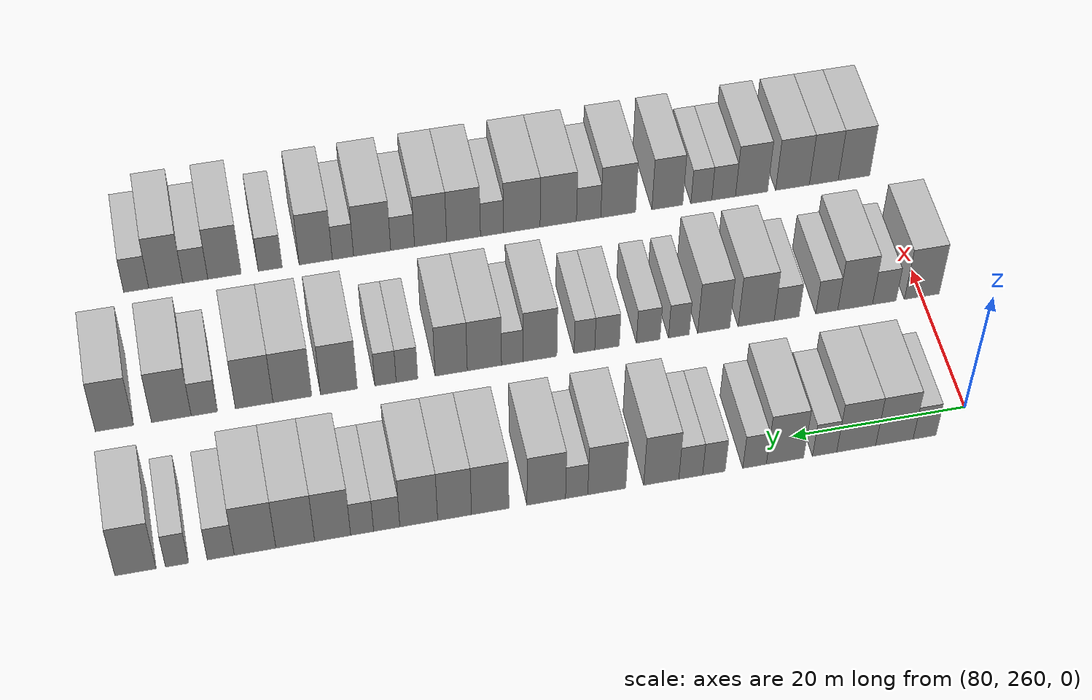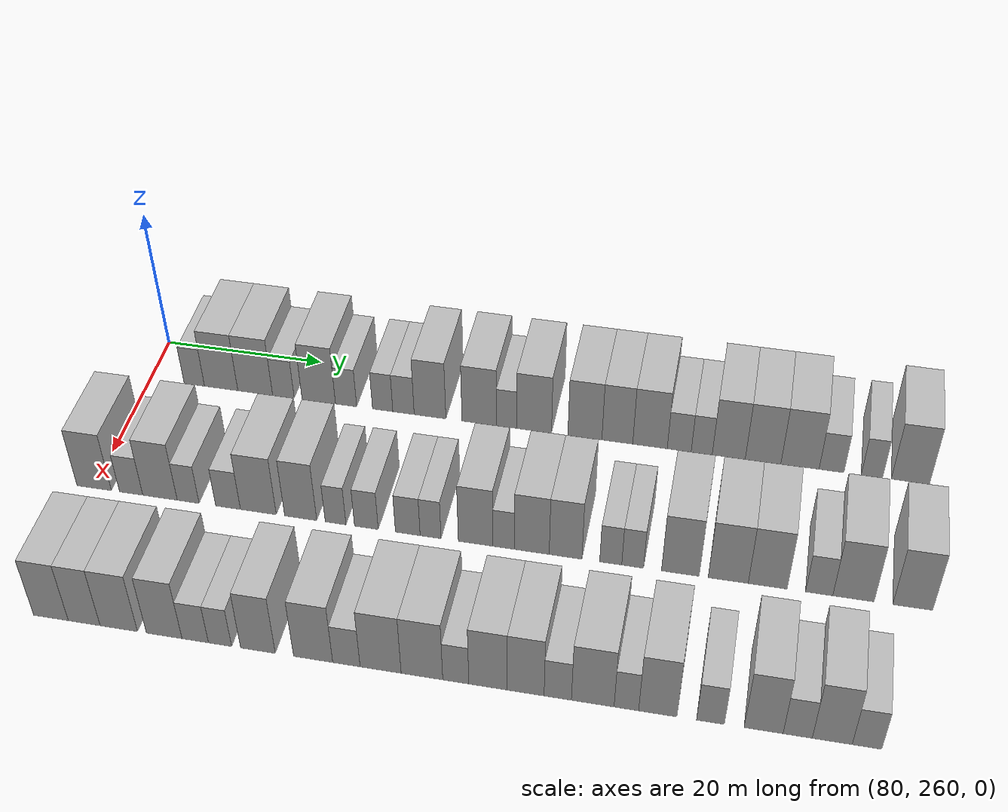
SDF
<sdf version="1.6">
 <world name="default">
  <model name="building_681">
   <static>1</static>
   <pose>82.0000 265.6900 0 0.000000 0.000000 0.000000</pose>
   <link name="link">
    <pose>0 0 3.00 0 0 0</pose>
    <collision name="collision"><geometry><box><size>10.0000 2.6414 6.0000</size></box></geometry></collision>
    <visual name="visual">
     <cast_shadows>0</cast_shadows>
     <geometry><box><size>10.0000 2.6414 6.0000</size></box></geometry>
     <material>
      <script>
       <uri>model://HANNAS_wall/materials/scripts</uri>
       <uri>model://HANNAS_wall/materials/textures</uri>
       <name>vrc/HANNAS_wall</name>
      </script>
     </material>
    </visual>
   </link>
  </model>
  <model name="building_682">
   <static>1</static>
   <pose>82.0000 269.1672 0 0.000000 0.000000 0.000000</pose>
   <link name="link">
    <pose>0 0 4.50 0 0 0</pose>
    <collision name="collision"><geometry><box><size>10.0000 4.3130 9.0000</size></box></geometry></collision>
    <visual name="visual">
     <cast_shadows>0</cast_shadows>
     <geometry><box><size>10.0000 4.3130 9.0000</size></box></geometry>
     <material>
      <script>
       <uri>model://HANNAS_wall/materials/scripts</uri>
       <uri>model://HANNAS_wall/materials/textures</uri>
       <name>vrc/HANNAS_wall</name>
      </script>
     </material>
    </visual>
   </link>
  </model>
  <model name="building_683">
   <static>1</static>
   <pose>82.0000 273.5604 0 0.000000 0.000000 0.000000</pose>
   <link name="link">
    <pose>0 0 4.50 0 0 0</pose>
    <collision name="collision"><geometry><box><size>10.0000 4.4733 9.0000</size></box></geometry></collision>
    <visual name="visual">
     <cast_shadows>0</cast_shadows>
     <geometry><box><size>10.0000 4.4733 9.0000</size></box></geometry>
     <material>
      <script>
       <uri>model://HANNAS_wall/materials/scripts</uri>
       <uri>model://HANNAS_wall/materials/textures</uri>
       <name>vrc/HANNAS_wall</name>
      </script>
     </material>
    </visual>
   </link>
  </model>
  <model name="building_684">
   <static>1</static>
   <pose>82.0000 277.1788 0 0.000000 0.000000 0.000000</pose>
   <link name="link">
    <pose>0 0 3.00 0 0 0</pose>
    <collision name="collision"><geometry><box><size>10.0000 2.7636 6.0000</size></box></geometry></collision>
    <visual name="visual">
     <cast_shadows>0</cast_shadows>
     <geometry><box><size>10.0000 2.7636 6.0000</size></box></geometry>
     <material>
      <script>
       <uri>model://HANNAS_wall/materials/scripts</uri>
       <uri>model://HANNAS_wall/materials/textures</uri>
       <name>vrc/HANNAS_wall</name>
      </script>
     </material>
    </visual>
   </link>
  </model>
  <model name="building_685">
   <static>1</static>
   <pose>82.0000 281.6848 0 0.000000 0.000000 0.000000</pose>
   <link name="link">
    <pose>0 0 4.50 0 0 0</pose>
    <collision name="collision"><geometry><box><size>10.0000 4.2485 9.0000</size></box></geometry></collision>
    <visual name="visual">
     <cast_shadows>0</cast_shadows>
     <geometry><box><size>10.0000 4.2485 9.0000</size></box></geometry>
     <material>
      <script>
       <uri>model://HANNAS_wall/materials/scripts</uri>
       <uri>model://HANNAS_wall/materials/textures</uri>
       <name>vrc/HANNAS_wall</name>
      </script>
     </material>
    </visual>
   </link>
  </model>
  <model name="building_686">
   <static>1</static>
   <pose>82.0000 285.1469 0 0.000000 0.000000 0.000000</pose>
   <link name="link">
    <pose>0 0 3.00 0 0 0</pose>
    <collision name="collision"><geometry><box><size>10.0000 2.6758 6.0000</size></box></geometry></collision>
    <visual name="visual">
     <cast_shadows>0</cast_shadows>
     <geometry><box><size>10.0000 2.6758 6.0000</size></box></geometry>
     <material>
      <script>
       <uri>model://HANNAS_wall/materials/scripts</uri>
       <uri>model://HANNAS_wall/materials/textures</uri>
       <name>vrc/HANNAS_wall</name>
      </script>
     </material>
    </visual>
   </link>
  </model>
  <model name="building_687">
   <static>1</static>
   <pose>82.0000 289.7579 0 0.000000 0.000000 0.000000</pose>
   <link name="link">
    <pose>0 0 3.00 0 0 0</pose>
    <collision name="collision"><geometry><box><size>10.0000 2.5463 6.0000</size></box></geometry></collision>
    <visual name="visual">
     <cast_shadows>0</cast_shadows>
     <geometry><box><size>10.0000 2.5463 6.0000</size></box></geometry>
     <material>
      <script>
       <uri>model://HANNAS_wall/materials/scripts</uri>
       <uri>model://HANNAS_wall/materials/textures</uri>
       <name>vrc/HANNAS_wall</name>
      </script>
     </material>
    </visual>
   </link>
  </model>
  <model name="building_688">
   <static>1</static>
   <pose>82.0000 292.3674 0 0.000000 0.000000 0.000000</pose>
   <link name="link">
    <pose>0 0 3.00 0 0 0</pose>
    <collision name="collision"><geometry><box><size>10.0000 2.6727 6.0000</size></box></geometry></collision>
    <visual name="visual">
     <cast_shadows>0</cast_shadows>
     <geometry><box><size>10.0000 2.6727 6.0000</size></box></geometry>
     <material>
      <script>
       <uri>model://HANNAS_wall/materials/scripts</uri>
       <uri>model://HANNAS_wall/materials/textures</uri>
       <name>vrc/HANNAS_wall</name>
      </script>
     </material>
    </visual>
   </link>
  </model>
  <model name="building_689">
   <static>1</static>
   <pose>82.0000 295.6810 0 0.000000 0.000000 0.000000</pose>
   <link name="link">
    <pose>0 0 4.50 0 0 0</pose>
    <collision name="collision"><geometry><box><size>10.0000 3.9546 9.0000</size></box></geometry></collision>
    <visual name="visual">
     <cast_shadows>0</cast_shadows>
     <geometry><box><size>10.0000 3.9546 9.0000</size></box></geometry>
     <material>
      <script>
       <uri>model://HANNAS_wall/materials/scripts</uri>
       <uri>model://HANNAS_wall/materials/textures</uri>
       <name>vrc/HANNAS_wall</name>
      </script>
     </material>
    </visual>
   </link>
  </model>
  <model name="building_690">
   <static>1</static>
   <pose>82.0000 301.7825 0 0.000000 0.000000 0.000000</pose>
   <link name="link">
    <pose>0 0 4.50 0 0 0</pose>
    <collision name="collision"><geometry><box><size>10.0000 4.2484 9.0000</size></box></geometry></collision>
    <visual name="visual">
     <cast_shadows>0</cast_shadows>
     <geometry><box><size>10.0000 4.2484 9.0000</size></box></geometry>
     <material>
      <script>
       <uri>model://HANNAS_wall/materials/scripts</uri>
       <uri>model://HANNAS_wall/materials/textures</uri>
       <name>vrc/HANNAS_wall</name>
      </script>
     </material>
    </visual>
   </link>
  </model>
  <model name="building_691">
   <static>1</static>
   <pose>82.0000 305.1392 0 0.000000 0.000000 0.000000</pose>
   <link name="link">
    <pose>0 0 3.00 0 0 0</pose>
    <collision name="collision"><geometry><box><size>10.0000 2.4652 6.0000</size></box></geometry></collision>
    <visual name="visual">
     <cast_shadows>0</cast_shadows>
     <geometry><box><size>10.0000 2.4652 6.0000</size></box></geometry>
     <material>
      <script>
       <uri>model://HANNAS_wall/materials/scripts</uri>
       <uri>model://HANNAS_wall/materials/textures</uri>
       <name>vrc/HANNAS_wall</name>
      </script>
     </material>
    </visual>
   </link>
  </model>
  <model name="building_692">
   <static>1</static>
   <pose>82.0000 308.5110 0 0.000000 0.000000 0.000000</pose>
   <link name="link">
    <pose>0 0 4.50 0 0 0</pose>
    <collision name="collision"><geometry><box><size>10.0000 4.2784 9.0000</size></box></geometry></collision>
    <visual name="visual">
     <cast_shadows>0</cast_shadows>
     <geometry><box><size>10.0000 4.2784 9.0000</size></box></geometry>
     <material>
      <script>
       <uri>model://HANNAS_wall/materials/scripts</uri>
       <uri>model://HANNAS_wall/materials/textures</uri>
       <name>vrc/HANNAS_wall</name>
      </script>
     </material>
    </visual>
   </link>
  </model>
  <model name="building_693">
   <static>1</static>
   <pose>82.0000 314.7091 0 0.000000 0.000000 0.000000</pose>
   <link name="link">
    <pose>0 0 4.50 0 0 0</pose>
    <collision name="collision"><geometry><box><size>10.0000 4.1179 9.0000</size></box></geometry></collision>
    <visual name="visual">
     <cast_shadows>0</cast_shadows>
     <geometry><box><size>10.0000 4.1179 9.0000</size></box></geometry>
     <material>
      <script>
       <uri>model://HANNAS_wall/materials/scripts</uri>
       <uri>model://HANNAS_wall/materials/textures</uri>
       <name>vrc/HANNAS_wall</name>
      </script>
     </material>
    </visual>
   </link>
  </model>
  <model name="building_694">
   <static>1</static>
   <pose>82.0000 318.6289 0 0.000000 0.000000 0.000000</pose>
   <link name="link">
    <pose>0 0 4.50 0 0 0</pose>
    <collision name="collision"><geometry><box><size>10.0000 3.7218 9.0000</size></box></geometry></collision>
    <visual name="visual">
     <cast_shadows>0</cast_shadows>
     <geometry><box><size>10.0000 3.7218 9.0000</size></box></geometry>
     <material>
      <script>
       <uri>model://HANNAS_wall/materials/scripts</uri>
       <uri>model://HANNAS_wall/materials/textures</uri>
       <name>vrc/HANNAS_wall</name>
      </script>
     </material>
    </visual>
   </link>
  </model>
  <model name="building_695">
   <static>1</static>
   <pose>82.0000 322.5590 0 0.000000 0.000000 0.000000</pose>
   <link name="link">
    <pose>0 0 4.50 0 0 0</pose>
    <collision name="collision"><geometry><box><size>10.0000 4.1383 9.0000</size></box></geometry></collision>
    <visual name="visual">
     <cast_shadows>0</cast_shadows>
     <geometry><box><size>10.0000 4.1383 9.0000</size></box></geometry>
     <material>
      <script>
       <uri>model://HANNAS_wall/materials/scripts</uri>
       <uri>model://HANNAS_wall/materials/textures</uri>
       <name>vrc/HANNAS_wall</name>
      </script>
     </material>
    </visual>
   </link>
  </model>
  <model name="building_696">
   <static>1</static>
   <pose>82.0000 326.0589 0 0.000000 0.000000 0.000000</pose>
   <link name="link">
    <pose>0 0 3.00 0 0 0</pose>
    <collision name="collision"><geometry><box><size>10.0000 2.8615 6.0000</size></box></geometry></collision>
    <visual name="visual">
     <cast_shadows>0</cast_shadows>
     <geometry><box><size>10.0000 2.8615 6.0000</size></box></geometry>
     <material>
      <script>
       <uri>model://HANNAS_wall/materials/scripts</uri>
       <uri>model://HANNAS_wall/materials/textures</uri>
       <name>vrc/HANNAS_wall</name>
      </script>
     </material>
    </visual>
   </link>
  </model>
  <model name="building_697">
   <static>1</static>
   <pose>82.0000 328.7392 0 0.000000 0.000000 0.000000</pose>
   <link name="link">
    <pose>0 0 3.00 0 0 0</pose>
    <collision name="collision"><geometry><box><size>10.0000 2.4992 6.0000</size></box></geometry></collision>
    <visual name="visual">
     <cast_shadows>0</cast_shadows>
     <geometry><box><size>10.0000 2.4992 6.0000</size></box></geometry>
     <material>
      <script>
       <uri>model://HANNAS_wall/materials/scripts</uri>
       <uri>model://HANNAS_wall/materials/textures</uri>
       <name>vrc/HANNAS_wall</name>
      </script>
     </material>
    </visual>
   </link>
  </model>
  <model name="building_698">
   <static>1</static>
   <pose>82.0000 331.9402 0 0.000000 0.000000 0.000000</pose>
   <link name="link">
    <pose>0 0 4.50 0 0 0</pose>
    <collision name="collision"><geometry><box><size>10.0000 3.9028 9.0000</size></box></geometry></collision>
    <visual name="visual">
     <cast_shadows>0</cast_shadows>
     <geometry><box><size>10.0000 3.9028 9.0000</size></box></geometry>
     <material>
      <script>
       <uri>model://HANNAS_wall/materials/scripts</uri>
       <uri>model://HANNAS_wall/materials/textures</uri>
       <name>vrc/HANNAS_wall</name>
      </script>
     </material>
    </visual>
   </link>
  </model>
  <model name="building_699">
   <static>1</static>
   <pose>82.0000 335.9878 0 0.000000 0.000000 0.000000</pose>
   <link name="link">
    <pose>0 0 4.50 0 0 0</pose>
    <collision name="collision"><geometry><box><size>10.0000 4.1924 9.0000</size></box></geometry></collision>
    <visual name="visual">
     <cast_shadows>0</cast_shadows>
     <geometry><box><size>10.0000 4.1924 9.0000</size></box></geometry>
     <material>
      <script>
       <uri>model://HANNAS_wall/materials/scripts</uri>
       <uri>model://HANNAS_wall/materials/textures</uri>
       <name>vrc/HANNAS_wall</name>
      </script>
     </material>
    </visual>
   </link>
  </model>
  <model name="building_700">
   <static>1</static>
   <pose>82.0000 340.3200 0 0.000000 0.000000 0.000000</pose>
   <link name="link">
    <pose>0 0 4.50 0 0 0</pose>
    <collision name="collision"><geometry><box><size>10.0000 4.4720 9.0000</size></box></geometry></collision>
    <visual name="visual">
     <cast_shadows>0</cast_shadows>
     <geometry><box><size>10.0000 4.4720 9.0000</size></box></geometry>
     <material>
      <script>
       <uri>model://HANNAS_wall/materials/scripts</uri>
       <uri>model://HANNAS_wall/materials/textures</uri>
       <name>vrc/HANNAS_wall</name>
      </script>
     </material>
    </visual>
   </link>
  </model>
  <model name="building_701">
   <static>1</static>
   <pose>82.0000 344.0036 0 0.000000 0.000000 0.000000</pose>
   <link name="link">
    <pose>0 0 3.00 0 0 0</pose>
    <collision name="collision"><geometry><box><size>10.0000 2.8953 6.0000</size></box></geometry></collision>
    <visual name="visual">
     <cast_shadows>0</cast_shadows>
     <geometry><box><size>10.0000 2.8953 6.0000</size></box></geometry>
     <material>
      <script>
       <uri>model://HANNAS_wall/materials/scripts</uri>
       <uri>model://HANNAS_wall/materials/textures</uri>
       <name>vrc/HANNAS_wall</name>
      </script>
     </material>
    </visual>
   </link>
  </model>
  <model name="building_702">
   <static>1</static>
   <pose>82.0000 348.6849 0 0.000000 0.000000 0.000000</pose>
   <link name="link">
    <pose>0 0 3.00 0 0 0</pose>
    <collision name="collision"><geometry><box><size>10.0000 2.4675 6.0000</size></box></geometry></collision>
    <visual name="visual">
     <cast_shadows>0</cast_shadows>
     <geometry><box><size>10.0000 2.4675 6.0000</size></box></geometry>
     <material>
      <script>
       <uri>model://HANNAS_wall/materials/scripts</uri>
       <uri>model://HANNAS_wall/materials/textures</uri>
       <name>vrc/HANNAS_wall</name>
      </script>
     </material>
    </visual>
   </link>
  </model>
  <model name="building_703">
   <static>1</static>
   <pose>82.0000 353.1127 0 0.000000 0.000000 0.000000</pose>
   <link name="link">
    <pose>0 0 4.50 0 0 0</pose>
    <collision name="collision"><geometry><box><size>10.0000 4.3880 9.0000</size></box></geometry></collision>
    <visual name="visual">
     <cast_shadows>0</cast_shadows>
     <geometry><box><size>10.0000 4.3880 9.0000</size></box></geometry>
     <material>
      <script>
       <uri>model://HANNAS_wall/materials/scripts</uri>
       <uri>model://HANNAS_wall/materials/textures</uri>
       <name>vrc/HANNAS_wall</name>
      </script>
     </material>
    </visual>
   </link>
  </model>
  <model name="building_854">
   <static>1</static>
   <pose>101.0000 260.0537 0 0.000000 0.000000 0.000000</pose>
   <link name="link">
    <pose>0 0 4.50 0 0 0</pose>
    <collision name="collision"><geometry><box><size>10.0000 4.2048 9.0000</size></box></geometry></collision>
    <visual name="visual">
     <cast_shadows>0</cast_shadows>
     <geometry><box><size>10.0000 4.2048 9.0000</size></box></geometry>
     <material>
      <script>
       <uri>model://HANNAS_wall/materials/scripts</uri>
       <uri>model://HANNAS_wall/materials/textures</uri>
       <name>vrc/HANNAS_wall</name>
      </script>
     </material>
    </visual>
   </link>
  </model>
  <model name="building_855">
   <static>1</static>
   <pose>101.0000 264.5765 0 0.000000 0.000000 0.000000</pose>
   <link name="link">
    <pose>0 0 3.00 0 0 0</pose>
    <collision name="collision"><geometry><box><size>10.0000 2.8407 6.0000</size></box></geometry></collision>
    <visual name="visual">
     <cast_shadows>0</cast_shadows>
     <geometry><box><size>10.0000 2.8407 6.0000</size></box></geometry>
     <material>
      <script>
       <uri>model://HANNAS_wall/materials/scripts</uri>
       <uri>model://HANNAS_wall/materials/textures</uri>
       <name>vrc/HANNAS_wall</name>
      </script>
     </material>
    </visual>
   </link>
  </model>
  <model name="building_856">
   <static>1</static>
   <pose>101.0000 268.0824 0 0.000000 0.000000 0.000000</pose>
   <link name="link">
    <pose>0 0 4.50 0 0 0</pose>
    <collision name="collision"><geometry><box><size>10.0000 4.1712 9.0000</size></box></geometry></collision>
    <visual name="visual">
     <cast_shadows>0</cast_shadows>
     <geometry><box><size>10.0000 4.1712 9.0000</size></box></geometry>
     <material>
      <script>
       <uri>model://HANNAS_wall/materials/scripts</uri>
       <uri>model://HANNAS_wall/materials/textures</uri>
       <name>vrc/HANNAS_wall</name>
      </script>
     </material>
    </visual>
   </link>
  </model>
  <model name="building_857">
   <static>1</static>
   <pose>101.0000 271.4851 0 0.000000 0.000000 0.000000</pose>
   <link name="link">
    <pose>0 0 3.00 0 0 0</pose>
    <collision name="collision"><geometry><box><size>10.0000 2.6342 6.0000</size></box></geometry></collision>
    <visual name="visual">
     <cast_shadows>0</cast_shadows>
     <geometry><box><size>10.0000 2.6342 6.0000</size></box></geometry>
     <material>
      <script>
       <uri>model://HANNAS_wall/materials/scripts</uri>
       <uri>model://HANNAS_wall/materials/textures</uri>
       <name>vrc/HANNAS_wall</name>
      </script>
     </material>
    </visual>
   </link>
  </model>
  <model name="building_858">
   <static>1</static>
   <pose>101.0000 276.2825 0 0.000000 0.000000 0.000000</pose>
   <link name="link">
    <pose>0 0 3.00 0 0 0</pose>
    <collision name="collision"><geometry><box><size>10.0000 2.9606 6.0000</size></box></geometry></collision>
    <visual name="visual">
     <cast_shadows>0</cast_shadows>
     <geometry><box><size>10.0000 2.9606 6.0000</size></box></geometry>
     <material>
      <script>
       <uri>model://HANNAS_wall/materials/scripts</uri>
       <uri>model://HANNAS_wall/materials/textures</uri>
       <name>vrc/HANNAS_wall</name>
      </script>
     </material>
    </visual>
   </link>
  </model>
  <model name="building_859">
   <static>1</static>
   <pose>101.0000 279.8986 0 0.000000 0.000000 0.000000</pose>
   <link name="link">
    <pose>0 0 4.50 0 0 0</pose>
    <collision name="collision"><geometry><box><size>10.0000 4.2716 9.0000</size></box></geometry></collision>
    <visual name="visual">
     <cast_shadows>0</cast_shadows>
     <geometry><box><size>10.0000 4.2716 9.0000</size></box></geometry>
     <material>
      <script>
       <uri>model://HANNAS_wall/materials/scripts</uri>
       <uri>model://HANNAS_wall/materials/textures</uri>
       <name>vrc/HANNAS_wall</name>
      </script>
     </material>
    </visual>
   </link>
  </model>
  <model name="building_860">
   <static>1</static>
   <pose>101.0000 284.9287 0 0.000000 0.000000 0.000000</pose>
   <link name="link">
    <pose>0 0 4.50 0 0 0</pose>
    <collision name="collision"><geometry><box><size>10.0000 3.7886 9.0000</size></box></geometry></collision>
    <visual name="visual">
     <cast_shadows>0</cast_shadows>
     <geometry><box><size>10.0000 3.7886 9.0000</size></box></geometry>
     <material>
      <script>
       <uri>model://HANNAS_wall/materials/scripts</uri>
       <uri>model://HANNAS_wall/materials/textures</uri>
       <name>vrc/HANNAS_wall</name>
      </script>
     </material>
    </visual>
   </link>
  </model>
  <model name="building_861">
   <static>1</static>
   <pose>101.0000 289.0426 0 0.000000 0.000000 0.000000</pose>
   <link name="link">
    <pose>0 0 3.00 0 0 0</pose>
    <collision name="collision"><geometry><box><size>10.0000 2.4391 6.0000</size></box></geometry></collision>
    <visual name="visual">
     <cast_shadows>0</cast_shadows>
     <geometry><box><size>10.0000 2.4391 6.0000</size></box></geometry>
     <material>
      <script>
       <uri>model://HANNAS_wall/materials/scripts</uri>
       <uri>model://HANNAS_wall/materials/textures</uri>
       <name>vrc/HANNAS_wall</name>
      </script>
     </material>
    </visual>
   </link>
  </model>
  <model name="building_862">
   <static>1</static>
   <pose>101.0000 292.6473 0 0.000000 0.000000 0.000000</pose>
   <link name="link">
    <pose>0 0 3.00 0 0 0</pose>
    <collision name="collision"><geometry><box><size>10.0000 2.7702 6.0000</size></box></geometry></collision>
    <visual name="visual">
     <cast_shadows>0</cast_shadows>
     <geometry><box><size>10.0000 2.7702 6.0000</size></box></geometry>
     <material>
      <script>
       <uri>model://HANNAS_wall/materials/scripts</uri>
       <uri>model://HANNAS_wall/materials/textures</uri>
       <name>vrc/HANNAS_wall</name>
      </script>
     </material>
    </visual>
   </link>
  </model>
  <model name="building_863">
   <static>1</static>
   <pose>101.0000 297.4650 0 0.000000 0.000000 0.000000</pose>
   <link name="link">
    <pose>0 0 3.00 0 0 0</pose>
    <collision name="collision"><geometry><box><size>10.0000 2.8652 6.0000</size></box></geometry></collision>
    <visual name="visual">
     <cast_shadows>0</cast_shadows>
     <geometry><box><size>10.0000 2.8652 6.0000</size></box></geometry>
     <material>
      <script>
       <uri>model://HANNAS_wall/materials/scripts</uri>
       <uri>model://HANNAS_wall/materials/textures</uri>
       <name>vrc/HANNAS_wall</name>
      </script>
     </material>
    </visual>
   </link>
  </model>
  <model name="building_864">
   <static>1</static>
   <pose>101.0000 300.1047 0 0.000000 0.000000 0.000000</pose>
   <link name="link">
    <pose>0 0 3.00 0 0 0</pose>
    <collision name="collision"><geometry><box><size>10.0000 2.4143 6.0000</size></box></geometry></collision>
    <visual name="visual">
     <cast_shadows>0</cast_shadows>
     <geometry><box><size>10.0000 2.4143 6.0000</size></box></geometry>
     <material>
      <script>
       <uri>model://HANNAS_wall/materials/scripts</uri>
       <uri>model://HANNAS_wall/materials/textures</uri>
       <name>vrc/HANNAS_wall</name>
      </script>
     </material>
    </visual>
   </link>
  </model>
  <model name="building_865">
   <static>1</static>
   <pose>101.0000 305.2949 0 0.000000 0.000000 0.000000</pose>
   <link name="link">
    <pose>0 0 4.50 0 0 0</pose>
    <collision name="collision"><geometry><box><size>10.0000 3.9660 9.0000</size></box></geometry></collision>
    <visual name="visual">
     <cast_shadows>0</cast_shadows>
     <geometry><box><size>10.0000 3.9660 9.0000</size></box></geometry>
     <material>
      <script>
       <uri>model://HANNAS_wall/materials/scripts</uri>
       <uri>model://HANNAS_wall/materials/textures</uri>
       <name>vrc/HANNAS_wall</name>
      </script>
     </material>
    </visual>
   </link>
  </model>
  <model name="building_866">
   <static>1</static>
   <pose>101.0000 308.4993 0 0.000000 0.000000 0.000000</pose>
   <link name="link">
    <pose>0 0 3.00 0 0 0</pose>
    <collision name="collision"><geometry><box><size>10.0000 2.4429 6.0000</size></box></geometry></collision>
    <visual name="visual">
     <cast_shadows>0</cast_shadows>
     <geometry><box><size>10.0000 2.4429 6.0000</size></box></geometry>
     <material>
      <script>
       <uri>model://HANNAS_wall/materials/scripts</uri>
       <uri>model://HANNAS_wall/materials/textures</uri>
       <name>vrc/HANNAS_wall</name>
      </script>
     </material>
    </visual>
   </link>
  </model>
  <model name="building_867">
   <static>1</static>
   <pose>101.0000 311.6948 0 0.000000 0.000000 0.000000</pose>
   <link name="link">
    <pose>0 0 4.50 0 0 0</pose>
    <collision name="collision"><geometry><box><size>10.0000 3.9481 9.0000</size></box></geometry></collision>
    <visual name="visual">
     <cast_shadows>0</cast_shadows>
     <geometry><box><size>10.0000 3.9481 9.0000</size></box></geometry>
     <material>
      <script>
       <uri>model://HANNAS_wall/materials/scripts</uri>
       <uri>model://HANNAS_wall/materials/textures</uri>
       <name>vrc/HANNAS_wall</name>
      </script>
     </material>
    </visual>
   </link>
  </model>
  <model name="building_868">
   <static>1</static>
   <pose>101.0000 315.5137 0 0.000000 0.000000 0.000000</pose>
   <link name="link">
    <pose>0 0 4.50 0 0 0</pose>
    <collision name="collision"><geometry><box><size>10.0000 3.6896 9.0000</size></box></geometry></collision>
    <visual name="visual">
     <cast_shadows>0</cast_shadows>
     <geometry><box><size>10.0000 3.6896 9.0000</size></box></geometry>
     <material>
      <script>
       <uri>model://HANNAS_wall/materials/scripts</uri>
       <uri>model://HANNAS_wall/materials/textures</uri>
       <name>vrc/HANNAS_wall</name>
      </script>
     </material>
    </visual>
   </link>
  </model>
  <model name="building_869">
   <static>1</static>
   <pose>101.0000 320.5913 0 0.000000 0.000000 0.000000</pose>
   <link name="link">
    <pose>0 0 3.00 0 0 0</pose>
    <collision name="collision"><geometry><box><size>10.0000 2.4656 6.0000</size></box></geometry></collision>
    <visual name="visual">
     <cast_shadows>0</cast_shadows>
     <geometry><box><size>10.0000 2.4656 6.0000</size></box></geometry>
     <material>
      <script>
       <uri>model://HANNAS_wall/materials/scripts</uri>
       <uri>model://HANNAS_wall/materials/textures</uri>
       <name>vrc/HANNAS_wall</name>
      </script>
     </material>
    </visual>
   </link>
  </model>
  <model name="building_870">
   <static>1</static>
   <pose>101.0000 323.0404 0 0.000000 0.000000 0.000000</pose>
   <link name="link">
    <pose>0 0 3.00 0 0 0</pose>
    <collision name="collision"><geometry><box><size>10.0000 2.4327 6.0000</size></box></geometry></collision>
    <visual name="visual">
     <cast_shadows>0</cast_shadows>
     <geometry><box><size>10.0000 2.4327 6.0000</size></box></geometry>
     <material>
      <script>
       <uri>model://HANNAS_wall/materials/scripts</uri>
       <uri>model://HANNAS_wall/materials/textures</uri>
       <name>vrc/HANNAS_wall</name>
      </script>
     </material>
    </visual>
   </link>
  </model>
  <model name="building_871">
   <static>1</static>
   <pose>101.0000 328.3406 0 0.000000 0.000000 0.000000</pose>
   <link name="link">
    <pose>0 0 4.50 0 0 0</pose>
    <collision name="collision"><geometry><box><size>10.0000 4.1677 9.0000</size></box></geometry></collision>
    <visual name="visual">
     <cast_shadows>0</cast_shadows>
     <geometry><box><size>10.0000 4.1677 9.0000</size></box></geometry>
     <material>
      <script>
       <uri>model://HANNAS_wall/materials/scripts</uri>
       <uri>model://HANNAS_wall/materials/textures</uri>
       <name>vrc/HANNAS_wall</name>
      </script>
     </material>
    </visual>
   </link>
  </model>
  <model name="building_872">
   <static>1</static>
   <pose>101.0000 333.6162 0 0.000000 0.000000 0.000000</pose>
   <link name="link">
    <pose>0 0 4.50 0 0 0</pose>
    <collision name="collision"><geometry><box><size>10.0000 4.3835 9.0000</size></box></geometry></collision>
    <visual name="visual">
     <cast_shadows>0</cast_shadows>
     <geometry><box><size>10.0000 4.3835 9.0000</size></box></geometry>
     <material>
      <script>
       <uri>model://HANNAS_wall/materials/scripts</uri>
       <uri>model://HANNAS_wall/materials/textures</uri>
       <name>vrc/HANNAS_wall</name>
      </script>
     </material>
    </visual>
   </link>
  </model>
  <model name="building_873">
   <static>1</static>
   <pose>101.0000 337.9310 0 0.000000 0.000000 0.000000</pose>
   <link name="link">
    <pose>0 0 4.50 0 0 0</pose>
    <collision name="collision"><geometry><box><size>10.0000 4.2460 9.0000</size></box></geometry></collision>
    <visual name="visual">
     <cast_shadows>0</cast_shadows>
     <geometry><box><size>10.0000 4.2460 9.0000</size></box></geometry>
     <material>
      <script>
       <uri>model://HANNAS_wall/materials/scripts</uri>
       <uri>model://HANNAS_wall/materials/textures</uri>
       <name>vrc/HANNAS_wall</name>
      </script>
     </material>
    </visual>
   </link>
  </model>
  <model name="building_874">
   <static>1</static>
   <pose>101.0000 343.5256 0 0.000000 0.000000 0.000000</pose>
   <link name="link">
    <pose>0 0 3.00 0 0 0</pose>
    <collision name="collision"><geometry><box><size>10.0000 2.9433 6.0000</size></box></geometry></collision>
    <visual name="visual">
     <cast_shadows>0</cast_shadows>
     <geometry><box><size>10.0000 2.9433 6.0000</size></box></geometry>
     <material>
      <script>
       <uri>model://HANNAS_wall/materials/scripts</uri>
       <uri>model://HANNAS_wall/materials/textures</uri>
       <name>vrc/HANNAS_wall</name>
      </script>
     </material>
    </visual>
   </link>
  </model>
  <model name="building_875">
   <static>1</static>
   <pose>101.0000 347.2171 0 0.000000 0.000000 0.000000</pose>
   <link name="link">
    <pose>0 0 4.50 0 0 0</pose>
    <collision name="collision"><geometry><box><size>10.0000 4.4397 9.0000</size></box></geometry></collision>
    <visual name="visual">
     <cast_shadows>0</cast_shadows>
     <geometry><box><size>10.0000 4.4397 9.0000</size></box></geometry>
     <material>
      <script>
       <uri>model://HANNAS_wall/materials/scripts</uri>
       <uri>model://HANNAS_wall/materials/textures</uri>
       <name>vrc/HANNAS_wall</name>
      </script>
     </material>
    </visual>
   </link>
  </model>
  <model name="building_876">
   <static>1</static>
   <pose>101.0000 353.5612 0 0.000000 0.000000 0.000000</pose>
   <link name="link">
    <pose>0 0 4.50 0 0 0</pose>
    <collision name="collision"><geometry><box><size>10.0000 4.2484 9.0000</size></box></geometry></collision>
    <visual name="visual">
     <cast_shadows>0</cast_shadows>
     <geometry><box><size>10.0000 4.2484 9.0000</size></box></geometry>
     <material>
      <script>
       <uri>model://HANNAS_wall/materials/scripts</uri>
       <uri>model://HANNAS_wall/materials/textures</uri>
       <name>vrc/HANNAS_wall</name>
      </script>
     </material>
    </visual>
   </link>
  </model>
  <model name="building_1026">
   <static>1</static>
   <pose>120.0000 262.6361 0 0.000000 0.000000 0.000000</pose>
   <link name="link">
    <pose>0 0 4.50 0 0 0</pose>
    <collision name="collision"><geometry><box><size>10.0000 3.9421 9.0000</size></box></geometry></collision>
    <visual name="visual">
     <cast_shadows>0</cast_shadows>
     <geometry><box><size>10.0000 3.9421 9.0000</size></box></geometry>
     <material>
      <script>
       <uri>model://HANNAS_wall/materials/scripts</uri>
       <uri>model://HANNAS_wall/materials/textures</uri>
       <name>vrc/HANNAS_wall</name>
      </script>
     </material>
    </visual>
   </link>
  </model>
  <model name="building_1027">
   <static>1</static>
   <pose>120.0000 266.4094 0 0.000000 0.000000 0.000000</pose>
   <link name="link">
    <pose>0 0 4.50 0 0 0</pose>
    <collision name="collision"><geometry><box><size>10.0000 3.6045 9.0000</size></box></geometry></collision>
    <visual name="visual">
     <cast_shadows>0</cast_shadows>
     <geometry><box><size>10.0000 3.6045 9.0000</size></box></geometry>
     <material>
      <script>
       <uri>model://HANNAS_wall/materials/scripts</uri>
       <uri>model://HANNAS_wall/materials/textures</uri>
       <name>vrc/HANNAS_wall</name>
      </script>
     </material>
    </visual>
   </link>
  </model>
  <model name="building_1028">
   <static>1</static>
   <pose>120.0000 270.3145 0 0.000000 0.000000 0.000000</pose>
   <link name="link">
    <pose>0 0 4.50 0 0 0</pose>
    <collision name="collision"><geometry><box><size>10.0000 4.2057 9.0000</size></box></geometry></collision>
    <visual name="visual">
     <cast_shadows>0</cast_shadows>
     <geometry><box><size>10.0000 4.2057 9.0000</size></box></geometry>
     <material>
      <script>
       <uri>model://HANNAS_wall/materials/scripts</uri>
       <uri>model://HANNAS_wall/materials/textures</uri>
       <name>vrc/HANNAS_wall</name>
      </script>
     </material>
    </visual>
   </link>
  </model>
  <model name="building_1029">
   <static>1</static>
   <pose>120.0000 275.4046 0 0.000000 0.000000 0.000000</pose>
   <link name="link">
    <pose>0 0 4.50 0 0 0</pose>
    <collision name="collision"><geometry><box><size>10.0000 3.9747 9.0000</size></box></geometry></collision>
    <visual name="visual">
     <cast_shadows>0</cast_shadows>
     <geometry><box><size>10.0000 3.9747 9.0000</size></box></geometry>
     <material>
      <script>
       <uri>model://HANNAS_wall/materials/scripts</uri>
       <uri>model://HANNAS_wall/materials/textures</uri>
       <name>vrc/HANNAS_wall</name>
      </script>
     </material>
    </visual>
   </link>
  </model>
  <model name="building_1030">
   <static>1</static>
   <pose>120.0000 278.8591 0 0.000000 0.000000 0.000000</pose>
   <link name="link">
    <pose>0 0 3.00 0 0 0</pose>
    <collision name="collision"><geometry><box><size>10.0000 2.9344 6.0000</size></box></geometry></collision>
    <visual name="visual">
     <cast_shadows>0</cast_shadows>
     <geometry><box><size>10.0000 2.9344 6.0000</size></box></geometry>
     <material>
      <script>
       <uri>model://HANNAS_wall/materials/scripts</uri>
       <uri>model://HANNAS_wall/materials/textures</uri>
       <name>vrc/HANNAS_wall</name>
      </script>
     </material>
    </visual>
   </link>
  </model>
  <model name="building_1031">
   <static>1</static>
   <pose>120.0000 281.6100 0 0.000000 0.000000 0.000000</pose>
   <link name="link">
    <pose>0 0 3.00 0 0 0</pose>
    <collision name="collision"><geometry><box><size>10.0000 2.5673 6.0000</size></box></geometry></collision>
    <visual name="visual">
     <cast_shadows>0</cast_shadows>
     <geometry><box><size>10.0000 2.5673 6.0000</size></box></geometry>
     <material>
      <script>
       <uri>model://HANNAS_wall/materials/scripts</uri>
       <uri>model://HANNAS_wall/materials/textures</uri>
       <name>vrc/HANNAS_wall</name>
      </script>
     </material>
    </visual>
   </link>
  </model>
  <model name="building_1032">
   <static>1</static>
   <pose>120.0000 285.7936 0 0.000000 0.000000 0.000000</pose>
   <link name="link">
    <pose>0 0 4.50 0 0 0</pose>
    <collision name="collision"><geometry><box><size>10.0000 3.7999 9.0000</size></box></geometry></collision>
    <visual name="visual">
     <cast_shadows>0</cast_shadows>
     <geometry><box><size>10.0000 3.7999 9.0000</size></box></geometry>
     <material>
      <script>
       <uri>model://HANNAS_wall/materials/scripts</uri>
       <uri>model://HANNAS_wall/materials/textures</uri>
       <name>vrc/HANNAS_wall</name>
      </script>
     </material>
    </visual>
   </link>
  </model>
  <model name="building_1033">
   <static>1</static>
   <pose>120.0000 291.8208 0 0.000000 0.000000 0.000000</pose>
   <link name="link">
    <pose>0 0 4.50 0 0 0</pose>
    <collision name="collision"><geometry><box><size>10.0000 4.2545 9.0000</size></box></geometry></collision>
    <visual name="visual">
     <cast_shadows>0</cast_shadows>
     <geometry><box><size>10.0000 4.2545 9.0000</size></box></geometry>
     <material>
      <script>
       <uri>model://HANNAS_wall/materials/scripts</uri>
       <uri>model://HANNAS_wall/materials/textures</uri>
       <name>vrc/HANNAS_wall</name>
      </script>
     </material>
    </visual>
   </link>
  </model>
  <model name="building_1034">
   <static>1</static>
   <pose>120.0000 295.4269 0 0.000000 0.000000 0.000000</pose>
   <link name="link">
    <pose>0 0 3.00 0 0 0</pose>
    <collision name="collision"><geometry><box><size>10.0000 2.9579 6.0000</size></box></geometry></collision>
    <visual name="visual">
     <cast_shadows>0</cast_shadows>
     <geometry><box><size>10.0000 2.9579 6.0000</size></box></geometry>
     <material>
      <script>
       <uri>model://HANNAS_wall/materials/scripts</uri>
       <uri>model://HANNAS_wall/materials/textures</uri>
       <name>vrc/HANNAS_wall</name>
      </script>
     </material>
    </visual>
   </link>
  </model>
  <model name="building_1035">
   <static>1</static>
   <pose>120.0000 299.1125 0 0.000000 0.000000 0.000000</pose>
   <link name="link">
    <pose>0 0 4.50 0 0 0</pose>
    <collision name="collision"><geometry><box><size>10.0000 4.4134 9.0000</size></box></geometry></collision>
    <visual name="visual">
     <cast_shadows>0</cast_shadows>
     <geometry><box><size>10.0000 4.4134 9.0000</size></box></geometry>
     <material>
      <script>
       <uri>model://HANNAS_wall/materials/scripts</uri>
       <uri>model://HANNAS_wall/materials/textures</uri>
       <name>vrc/HANNAS_wall</name>
      </script>
     </material>
    </visual>
   </link>
  </model>
  <model name="building_1036">
   <static>1</static>
   <pose>120.0000 303.5367 0 0.000000 0.000000 0.000000</pose>
   <link name="link">
    <pose>0 0 4.50 0 0 0</pose>
    <collision name="collision"><geometry><box><size>10.0000 4.4349 9.0000</size></box></geometry></collision>
    <visual name="visual">
     <cast_shadows>0</cast_shadows>
     <geometry><box><size>10.0000 4.4349 9.0000</size></box></geometry>
     <material>
      <script>
       <uri>model://HANNAS_wall/materials/scripts</uri>
       <uri>model://HANNAS_wall/materials/textures</uri>
       <name>vrc/HANNAS_wall</name>
      </script>
     </material>
    </visual>
   </link>
  </model>
  <model name="building_1037">
   <static>1</static>
   <pose>120.0000 307.1360 0 0.000000 0.000000 0.000000</pose>
   <link name="link">
    <pose>0 0 3.00 0 0 0</pose>
    <collision name="collision"><geometry><box><size>10.0000 2.7639 6.0000</size></box></geometry></collision>
    <visual name="visual">
     <cast_shadows>0</cast_shadows>
     <geometry><box><size>10.0000 2.7639 6.0000</size></box></geometry>
     <material>
      <script>
       <uri>model://HANNAS_wall/materials/scripts</uri>
       <uri>model://HANNAS_wall/materials/textures</uri>
       <name>vrc/HANNAS_wall</name>
      </script>
     </material>
    </visual>
   </link>
  </model>
  <model name="building_1038">
   <static>1</static>
   <pose>120.0000 310.5487 0 0.000000 0.000000 0.000000</pose>
   <link name="link">
    <pose>0 0 4.50 0 0 0</pose>
    <collision name="collision"><geometry><box><size>10.0000 4.0615 9.0000</size></box></geometry></collision>
    <visual name="visual">
     <cast_shadows>0</cast_shadows>
     <geometry><box><size>10.0000 4.0615 9.0000</size></box></geometry>
     <material>
      <script>
       <uri>model://HANNAS_wall/materials/scripts</uri>
       <uri>model://HANNAS_wall/materials/textures</uri>
       <name>vrc/HANNAS_wall</name>
      </script>
     </material>
    </visual>
   </link>
  </model>
  <model name="building_1039">
   <static>1</static>
   <pose>120.0000 314.5030 0 0.000000 0.000000 0.000000</pose>
   <link name="link">
    <pose>0 0 4.50 0 0 0</pose>
    <collision name="collision"><geometry><box><size>10.0000 3.8472 9.0000</size></box></geometry></collision>
    <visual name="visual">
     <cast_shadows>0</cast_shadows>
     <geometry><box><size>10.0000 3.8472 9.0000</size></box></geometry>
     <material>
      <script>
       <uri>model://HANNAS_wall/materials/scripts</uri>
       <uri>model://HANNAS_wall/materials/textures</uri>
       <name>vrc/HANNAS_wall</name>
      </script>
     </material>
    </visual>
   </link>
  </model>
  <model name="building_1040">
   <static>1</static>
   <pose>120.0000 317.8497 0 0.000000 0.000000 0.000000</pose>
   <link name="link">
    <pose>0 0 3.00 0 0 0</pose>
    <collision name="collision"><geometry><box><size>10.0000 2.8461 6.0000</size></box></geometry></collision>
    <visual name="visual">
     <cast_shadows>0</cast_shadows>
     <geometry><box><size>10.0000 2.8461 6.0000</size></box></geometry>
     <material>
      <script>
       <uri>model://HANNAS_wall/materials/scripts</uri>
       <uri>model://HANNAS_wall/materials/textures</uri>
       <name>vrc/HANNAS_wall</name>
      </script>
     </material>
    </visual>
   </link>
  </model>
  <model name="building_1041">
   <static>1</static>
   <pose>120.0000 321.4813 0 0.000000 0.000000 0.000000</pose>
   <link name="link">
    <pose>0 0 4.50 0 0 0</pose>
    <collision name="collision"><geometry><box><size>10.0000 4.4171 9.0000</size></box></geometry></collision>
    <visual name="visual">
     <cast_shadows>0</cast_shadows>
     <geometry><box><size>10.0000 4.4171 9.0000</size></box></geometry>
     <material>
      <script>
       <uri>model://HANNAS_wall/materials/scripts</uri>
       <uri>model://HANNAS_wall/materials/textures</uri>
       <name>vrc/HANNAS_wall</name>
      </script>
     </material>
    </visual>
   </link>
  </model>
  <model name="building_1042">
   <static>1</static>
   <pose>120.0000 324.9537 0 0.000000 0.000000 0.000000</pose>
   <link name="link">
    <pose>0 0 3.00 0 0 0</pose>
    <collision name="collision"><geometry><box><size>10.0000 2.5278 6.0000</size></box></geometry></collision>
    <visual name="visual">
     <cast_shadows>0</cast_shadows>
     <geometry><box><size>10.0000 2.5278 6.0000</size></box></geometry>
     <material>
      <script>
       <uri>model://HANNAS_wall/materials/scripts</uri>
       <uri>model://HANNAS_wall/materials/textures</uri>
       <name>vrc/HANNAS_wall</name>
      </script>
     </material>
    </visual>
   </link>
  </model>
  <model name="building_1043">
   <static>1</static>
   <pose>120.0000 328.1801 0 0.000000 0.000000 0.000000</pose>
   <link name="link">
    <pose>0 0 4.50 0 0 0</pose>
    <collision name="collision"><geometry><box><size>10.0000 3.9250 9.0000</size></box></geometry></collision>
    <visual name="visual">
     <cast_shadows>0</cast_shadows>
     <geometry><box><size>10.0000 3.9250 9.0000</size></box></geometry>
     <material>
      <script>
       <uri>model://HANNAS_wall/materials/scripts</uri>
       <uri>model://HANNAS_wall/materials/textures</uri>
       <name>vrc/HANNAS_wall</name>
      </script>
     </material>
    </visual>
   </link>
  </model>
  <model name="building_1044">
   <static>1</static>
   <pose>120.0000 333.5544 0 0.000000 0.000000 0.000000</pose>
   <link name="link">
    <pose>0 0 3.00 0 0 0</pose>
    <collision name="collision"><geometry><box><size>10.0000 2.8235 6.0000</size></box></geometry></collision>
    <visual name="visual">
     <cast_shadows>0</cast_shadows>
     <geometry><box><size>10.0000 2.8235 6.0000</size></box></geometry>
     <material>
      <script>
       <uri>model://HANNAS_wall/materials/scripts</uri>
       <uri>model://HANNAS_wall/materials/textures</uri>
       <name>vrc/HANNAS_wall</name>
      </script>
     </material>
    </visual>
   </link>
  </model>
  <model name="building_1045">
   <static>1</static>
   <pose>120.0000 338.9243 0 0.000000 0.000000 0.000000</pose>
   <link name="link">
    <pose>0 0 4.50 0 0 0</pose>
    <collision name="collision"><geometry><box><size>10.0000 3.9164 9.0000</size></box></geometry></collision>
    <visual name="visual">
     <cast_shadows>0</cast_shadows>
     <geometry><box><size>10.0000 3.9164 9.0000</size></box></geometry>
     <material>
      <script>
       <uri>model://HANNAS_wall/materials/scripts</uri>
       <uri>model://HANNAS_wall/materials/textures</uri>
       <name>vrc/HANNAS_wall</name>
      </script>
     </material>
    </visual>
   </link>
  </model>
  <model name="building_1046">
   <static>1</static>
   <pose>120.0000 342.3403 0 0.000000 0.000000 0.000000</pose>
   <link name="link">
    <pose>0 0 3.00 0 0 0</pose>
    <collision name="collision"><geometry><box><size>10.0000 2.9157 6.0000</size></box></geometry></collision>
    <visual name="visual">
     <cast_shadows>0</cast_shadows>
     <geometry><box><size>10.0000 2.9157 6.0000</size></box></geometry>
     <material>
      <script>
       <uri>model://HANNAS_wall/materials/scripts</uri>
       <uri>model://HANNAS_wall/materials/textures</uri>
       <name>vrc/HANNAS_wall</name>
      </script>
     </material>
    </visual>
   </link>
  </model>
  <model name="building_1047">
   <static>1</static>
   <pose>120.0000 345.7852 0 0.000000 0.000000 0.000000</pose>
   <link name="link">
    <pose>0 0 4.50 0 0 0</pose>
    <collision name="collision"><geometry><box><size>10.0000 3.9742 9.0000</size></box></geometry></collision>
    <visual name="visual">
     <cast_shadows>0</cast_shadows>
     <geometry><box><size>10.0000 3.9742 9.0000</size></box></geometry>
     <material>
      <script>
       <uri>model://HANNAS_wall/materials/scripts</uri>
       <uri>model://HANNAS_wall/materials/textures</uri>
       <name>vrc/HANNAS_wall</name>
      </script>
     </material>
    </visual>
   </link>
  </model>
  <model name="building_1048">
   <static>1</static>
   <pose>120.0000 349.2340 0 0.000000 0.000000 0.000000</pose>
   <link name="link">
    <pose>0 0 3.00 0 0 0</pose>
    <collision name="collision"><geometry><box><size>10.0000 2.9234 6.0000</size></box></geometry></collision>
    <visual name="visual">
     <cast_shadows>0</cast_shadows>
     <geometry><box><size>10.0000 2.9234 6.0000</size></box></geometry>
     <material>
      <script>
       <uri>model://HANNAS_wall/materials/scripts</uri>
       <uri>model://HANNAS_wall/materials/textures</uri>
       <name>vrc/HANNAS_wall</name>
      </script>
     </material>
    </visual>
   </link>
  </model>
 </world>
</sdf>
